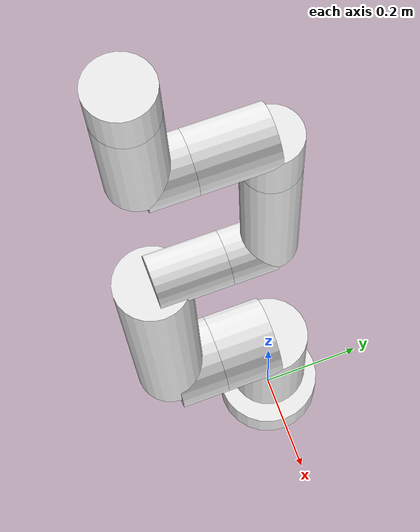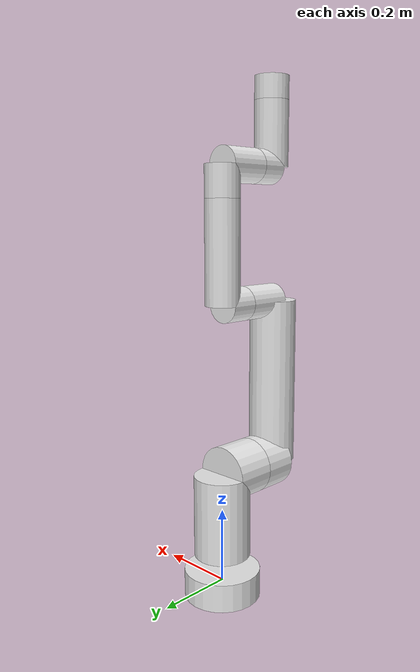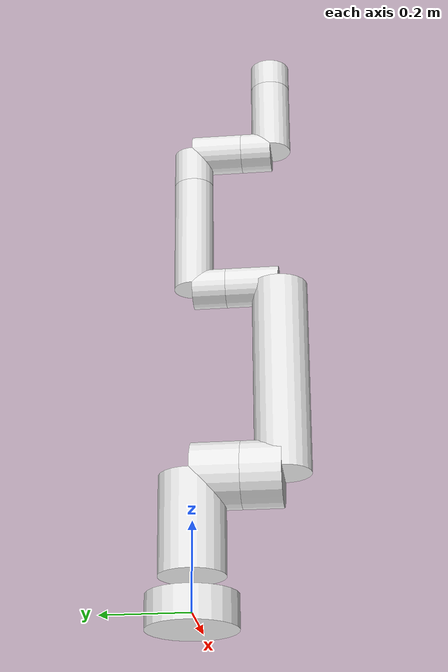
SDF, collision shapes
<sdf version='1.6'>
  <model name='indy7'>
    <link name='link0'>
      <pose frame=''>0 0 0 0 -0 0</pose>
      <inertial>
        <pose frame=''>0 0 0 0 -0 0</pose>
        <mass>1.59307</mass>
        <inertia>
          <ixx>0.00572623</ixx>
          <ixy>2.51e-06</ixy>
          <ixz>-0.0001138</ixz>
          <iyy>0.00558959</iyy>
          <iyz>-1.4e-07</iyz>
          <izz>0.00966674</izz>
        </inertia>
      </inertial>
      <collision name='link0_collision'>
        <pose frame=''>0 0 0 0 -0 0</pose>
        <geometry>
          <cylinder>
            <length>0.075</length>
            <radius>0.102</radius>
          </cylinder>
        </geometry>
        <surface>
          <contact>
            <ode/>
          </contact>
          <friction>
            <ode>
              <mu>0.2</mu>
              <mu2>0.2</mu2>
            </ode>
          </friction>
        </surface>
      </collision>
      <visual name='link0_visual'>
        <pose frame=''>0 0 0 0 -0 0</pose>
        <geometry>
          <mesh>
            <scale>1 1 1</scale>
            <uri>model://indy7_description/meshes/stl/Indy7_0.stl</uri>
          </mesh>
        </geometry>
        <material>
          <script>
            <name>Gazebo/White</name>
            <uri>file://media/materials/scripts/gazebo.material</uri>
          </script>
        </material>
      </visual>
      <gravity>1</gravity>
      <velocity_decay/>
    </link>
    <joint name='global' type='fixed'>
      <child>link0</child>
      <parent>world</parent>
    </joint>
    <link name='link1'>
      <pose frame=''>0 0 0.0775 0 -0 0</pose>
      <inertial>
        <pose frame=''>0 0 0 0 -0 0</pose>
        <mass>11.803</mass>
        <inertia>
          <ixx>0.154186</ixx>
          <ixy>-2.35e-06</ixy>
          <ixz>1.739e-05</ixz>
          <iyy>0.12937</iyy>
          <iyz>-0.0485427</iyz>
          <izz>0.0596441</izz>
        </inertia>
      </inertial>
      <collision name='link1_collision'>
        <pose frame=''>0 0 0.111 0 -0 0</pose>
        <geometry>
          <cylinder>
            <length>0.222</length>
            <radius>0.075</radius>
          </cylinder>
        </geometry>
        <surface>
          <contact>
            <ode/>
          </contact>
          <friction>
            <ode>
              <mu>0.2</mu>
              <mu2>0.2</mu2>
            </ode>
          </friction>
        </surface>
      </collision>
      <collision name='link1_collision_1'>
        <pose frame=''>0 -0.0545 0.222 1.5708 -0 0</pose>
        <geometry>
          <cylinder>
            <length>0.109</length>
            <radius>0.075</radius>
          </cylinder>
        </geometry>
        <surface>
          <contact>
            <ode/>
          </contact>
          <friction>
            <ode>
              <mu>0.2</mu>
              <mu2>0.2</mu2>
            </ode>
          </friction>
        </surface>
      </collision>
      <visual name='link1_visual'>
        <pose frame=''>0 0 0 0 -0 0</pose>
        <geometry>
          <mesh>
            <scale>1 1 1</scale>
            <uri>model://indy7_description/meshes/stl/Indy7_1.stl</uri>
          </mesh>
        </geometry>
        <material>
          <script>
            <name>Gazebo/White</name>
            <uri>file://media/materials/scripts/gazebo.material</uri>
          </script>
        </material>
      </visual>
      <gravity>1</gravity>
      <velocity_decay/>
    </link>
    <joint name='joint0' type='revolute'>
      <child>link1</child>
      <parent>link0</parent>
      <axis>
        <xyz>0 0 1</xyz>
        <limit>
          <lower>-3.05433</lower>
          <upper>3.05433</upper>
          <effort>10</effort>
          <velocity>1</velocity>
        </limit>
        <dynamics>
          <spring_reference>0</spring_reference>
          <spring_stiffness>0</spring_stiffness>
        </dynamics>
        <use_parent_model_frame>1</use_parent_model_frame>
      </axis>
    </joint>
    <link name='link2'>
      <pose frame=''>0 -0.109 0.2995 -1.57079 1.57079 3.14159</pose>
      <inertial>
        <pose frame=''>0 0 0 0 -0 0</pose>
        <mass>7.99292</mass>
        <inertia>
          <ixx>0.29357</ixx>
          <ixy>-4e-07</ixy>
          <ixz>1.441e-05</ixz>
          <iyy>0.280941</iyy>
          <iyz>0.0372797</iyz>
          <izz>0.0362061</izz>
        </inertia>
      </inertial>
      <collision name='link2_collision'>
        <pose frame=''>-0.225 0 0.09 1.5708 0 -1.5708</pose>
        <geometry>
          <cylinder>
            <length>0.45</length>
            <radius>0.063</radius>
          </cylinder>
        </geometry>
        <surface>
          <contact>
            <ode/>
          </contact>
          <friction>
            <ode>
              <mu>0.2</mu>
              <mu2>0.2</mu2>
            </ode>
          </friction>
        </surface>
      </collision>
      <collision name='link2_collision_1'>
        <pose frame=''>0 0 0.045 0 -0 0</pose>
        <geometry>
          <cylinder>
            <length>0.09</length>
            <radius>0.075</radius>
          </cylinder>
        </geometry>
        <surface>
          <contact>
            <ode/>
          </contact>
          <friction>
            <ode>
              <mu>0.2</mu>
              <mu2>0.2</mu2>
            </ode>
          </friction>
        </surface>
      </collision>
      <collision name='link2_collision_2'>
        <pose frame=''>-0.45 0 0.02975 0 -0 0</pose>
        <geometry>
          <cylinder>
            <length>0.1205</length>
            <radius>0.045</radius>
          </cylinder>
        </geometry>
        <surface>
          <contact>
            <ode/>
          </contact>
          <friction>
            <ode>
              <mu>0.2</mu>
              <mu2>0.2</mu2>
            </ode>
          </friction>
        </surface>
      </collision>
      <visual name='link2_visual'>
        <pose frame=''>0 0 0 0 -0 0</pose>
        <geometry>
          <mesh>
            <scale>1 1 1</scale>
            <uri>model://indy7_description/meshes/stl/Indy7_2.stl</uri>
          </mesh>
        </geometry>
        <material>
          <script>
            <name>Gazebo/White</name>
            <uri>file://media/materials/scripts/gazebo.material</uri>
          </script>
        </material>
      </visual>
      <gravity>1</gravity>
      <velocity_decay/>
    </link>
    <joint name='joint1' type='revolute'>
      <child>link2</child>
      <parent>link1</parent>
      <axis>
        <xyz>0 -1 -0</xyz>
        <limit>
          <lower>-3.05433</lower>
          <upper>3.05433</upper>
          <effort>10</effort>
          <velocity>1</velocity>
        </limit>
        <dynamics>
          <spring_reference>0</spring_reference>
          <spring_stiffness>0</spring_stiffness>
        </dynamics>
        <use_parent_model_frame>1</use_parent_model_frame>
      </axis>
    </joint>
    <link name='link3'>
      <pose frame=''>-0 -0.0785 0.7495 -1.57079 1.57079 3.14159</pose>
      <inertial>
        <pose frame=''>0 0 0 0 -0 0</pose>
        <mass>2.99134</mass>
        <inertia>
          <ixx>0.0342459</ixx>
          <ixy>1.49e-06</ixy>
          <ixz>7.24e-06</ixz>
          <iyy>0.0340602</iyy>
          <iyz>0.00186009</iyz>
          <izz>0.00450477</izz>
        </inertia>
      </inertial>
      <collision name='link3_collision'>
        <pose frame=''>-0.1335 0 -0.075 1.5708 0 -1.5708</pose>
        <geometry>
          <cylinder>
            <length>0.267</length>
            <radius>0.045</radius>
          </cylinder>
        </geometry>
        <surface>
          <contact>
            <ode/>
          </contact>
          <friction>
            <ode>
              <mu>0.2</mu>
              <mu2>0.2</mu2>
            </ode>
          </friction>
        </surface>
      </collision>
      <collision name='link3_collision_1'>
        <pose frame=''>0 0 -0.0375 0 -0 0</pose>
        <geometry>
          <cylinder>
            <length>0.075</length>
            <radius>0.045</radius>
          </cylinder>
        </geometry>
        <surface>
          <contact>
            <ode/>
          </contact>
          <friction>
            <ode>
              <mu>0.2</mu>
              <mu2>0.2</mu2>
            </ode>
          </friction>
        </surface>
      </collision>
      <visual name='link3_visual'>
        <pose frame=''>0 0 0 0 -0 0</pose>
        <geometry>
          <mesh>
            <scale>1 1 1</scale>
            <uri>model://indy7_description/meshes/stl/Indy7_3.stl</uri>
          </mesh>
        </geometry>
        <material>
          <script>
            <name>Gazebo/White</name>
            <uri>file://media/materials/scripts/gazebo.material</uri>
          </script>
        </material>
      </visual>
      <gravity>1</gravity>
      <velocity_decay/>
    </link>
    <joint name='joint2' type='revolute'>
      <child>link3</child>
      <parent>link2</parent>
      <axis>
        <xyz>0 -1 -0</xyz>
        <limit>
          <lower>-3.05433</lower>
          <upper>3.05433</upper>
          <effort>10</effort>
          <velocity>1</velocity>
        </limit>
        <dynamics>
          <spring_reference>0</spring_reference>
          <spring_stiffness>0</spring_stiffness>
        </dynamics>
        <use_parent_model_frame>1</use_parent_model_frame>
      </axis>
    </joint>
    <link name='link4'>
      <pose frame=''>-0 -0.0035 1.0165 0 -0 0</pose>
      <inertial>
        <pose frame=''>0 0 0 0 -0 0</pose>
        <mass>2.12317</mass>
        <inertia>
          <ixx>0.00670405</ixx>
          <ixy>3.75e-06</ixy>
          <ixz>1.5e-06</ixz>
          <iyy>0.00279246</iyy>
          <iyz>-0.00127967</iyz>
          <izz>0.00619341</izz>
        </inertia>
      </inertial>
      <collision name='link4_collision'>
        <pose frame=''>0 -0.057 0.083 1.5708 -0 0</pose>
        <geometry>
          <cylinder>
            <length>0.114</length>
            <radius>0.045</radius>
          </cylinder>
        </geometry>
        <surface>
          <contact>
            <ode/>
          </contact>
          <friction>
            <ode>
              <mu>0.2</mu>
              <mu2>0.2</mu2>
            </ode>
          </friction>
        </surface>
      </collision>
      <collision name='link4_collision_1'>
        <pose frame=''>0 -0.057 0.083 1.5708 -0 0</pose>
        <geometry>
          <cylinder>
            <length>0.114</length>
            <radius>0.045</radius>
          </cylinder>
        </geometry>
        <surface>
          <contact>
            <ode/>
          </contact>
          <friction>
            <ode>
              <mu>0.2</mu>
              <mu2>0.2</mu2>
            </ode>
          </friction>
        </surface>
      </collision>
      <collision name='link4_collision_2'>
        <pose frame=''>0 0 0.0415 0 -0 0</pose>
        <geometry>
          <cylinder>
            <length>0.083</length>
            <radius>0.045</radius>
          </cylinder>
        </geometry>
        <surface>
          <contact>
            <ode/>
          </contact>
          <friction>
            <ode>
              <mu>0.2</mu>
              <mu2>0.2</mu2>
            </ode>
          </friction>
        </surface>
      </collision>
      <visual name='link4_visual'>
        <pose frame=''>0 0 0 0 -0 0</pose>
        <geometry>
          <mesh>
            <scale>1 1 1</scale>
            <uri>model://indy7_description/meshes/stl/Indy7_4.stl</uri>
          </mesh>
        </geometry>
        <material>
          <script>
            <name>Gazebo/White</name>
            <uri>file://media/materials/scripts/gazebo.material</uri>
          </script>
        </material>
      </visual>
      <gravity>1</gravity>
      <velocity_decay/>
    </link>
    <joint name='joint3' type='revolute'>
      <child>link4</child>
      <parent>link3</parent>
      <axis>
        <xyz>-0 -0 1</xyz>
        <limit>
          <lower>-3.05433</lower>
          <upper>3.05433</upper>
          <effort>10</effort>
          <velocity>1</velocity>
        </limit>
        <dynamics>
          <spring_reference>0</spring_reference>
          <spring_stiffness>0</spring_stiffness>
        </dynamics>
        <use_parent_model_frame>1</use_parent_model_frame>
      </axis>
    </joint>
    <link name='link5'>
      <pose frame=''>-0 -0.1175 1.0995 -1.57079 1.57079 3.14159</pose>
      <inertial>
        <pose frame=''>0 0 0 0 -0 0</pose>
        <mass>2.28865</mass>
        <inertia>
          <ixx>0.00994891</ixx>
          <ixy>1.4e-07</ixy>
          <ixz>3.21e-06</ixz>
          <iyy>0.00978189</iyy>
          <iyz>-0.00093546</iyz>
          <izz>0.00271492</izz>
        </inertia>
      </inertial>
      <collision name='link5_collision'>
        <pose frame=''>-0.084 0 0.069 1.5708 0 -1.5708</pose>
        <geometry>
          <cylinder>
            <length>0.168</length>
            <radius>0.045</radius>
          </cylinder>
        </geometry>
        <surface>
          <contact>
            <ode/>
          </contact>
          <friction>
            <ode>
              <mu>0.2</mu>
              <mu2>0.2</mu2>
            </ode>
          </friction>
        </surface>
      </collision>
      <collision name='link5_collision_1'>
        <pose frame=''>-0 0 0.0345 0 -0 0</pose>
        <geometry>
          <cylinder>
            <length>0.069</length>
            <radius>0.045</radius>
          </cylinder>
        </geometry>
        <surface>
          <contact>
            <ode/>
          </contact>
          <friction>
            <ode>
              <mu>0.2</mu>
              <mu2>0.2</mu2>
            </ode>
          </friction>
        </surface>
      </collision>
      <visual name='link5_visual'>
        <pose frame=''>0 0 0 0 -0 0</pose>
        <geometry>
          <mesh>
            <scale>1 1 1</scale>
            <uri>model://indy7_description/meshes/stl/Indy7_5.stl</uri>
          </mesh>
        </geometry>
        <material>
          <script>
            <name>Gazebo/White</name>
            <uri>file://media/materials/scripts/gazebo.material</uri>
          </script>
        </material>
      </visual>
      <gravity>1</gravity>
      <velocity_decay/>
    </link>
    <joint name='joint4' type='revolute'>
      <child>link5</child>
      <parent>link4</parent>
      <axis>
        <xyz>0 -1 -0</xyz>
        <limit>
          <lower>-3.05433</lower>
          <upper>3.05433</upper>
          <effort>10</effort>
          <velocity>1</velocity>
        </limit>
        <dynamics>
          <spring_reference>0</spring_reference>
          <spring_stiffness>0</spring_stiffness>
        </dynamics>
        <use_parent_model_frame>1</use_parent_model_frame>
      </axis>
    </joint>
    <link name='link6'>
      <pose frame=''>-0 -0.1865 1.2675 0 -0 0</pose>
      <inertial>
        <pose frame=''>0 0 0 0 -0 0</pose>
        <mass>0.400839</mass>
        <inertia>
          <ixx>0.00043534</ixx>
          <ixy>1.3e-07</ixy>
          <ixz>-2e-08</ixz>
          <iyy>0.00044549</iyy>
          <iyz>5.1e-07</iyz>
          <izz>0.00059634</izz>
        </inertia>
      </inertial>
      <collision name='link6_collision'>
        <pose frame=''>0 0 0.03 0 -0 0</pose>
        <geometry>
          <cylinder>
            <length>0.06</length>
            <radius>0.045</radius>
          </cylinder>
        </geometry>
        <surface>
          <contact>
            <ode/>
          </contact>
          <friction>
            <ode>
              <mu>0.2</mu>
              <mu2>0.2</mu2>
            </ode>
          </friction>
        </surface>
      </collision>
      <visual name='link6_visual'>
        <pose frame=''>0 0 0 0 -0 0</pose>
        <geometry>
          <mesh>
            <scale>1 1 1</scale>
            <uri>model://indy7_description/meshes/stl/Indy7_6.stl</uri>
          </mesh>
        </geometry>
        <material>
          <script>
            <name>Gazebo/White</name>
            <uri>file://media/materials/scripts/gazebo.material</uri>
          </script>
        </material>
      </visual>
      <gravity>1</gravity>
      <velocity_decay/>
    </link>
    <joint name='joint5' type='revolute'>
      <child>link6</child>
      <parent>link5</parent>
      <axis>
        <xyz>-0 -0 1</xyz>
        <limit>
          <lower>-3.75246</lower>
          <upper>3.75246</upper>
          <effort>10</effort>
          <velocity>1</velocity>
        </limit>
        <dynamics>
          <spring_reference>0</spring_reference>
          <spring_stiffness>0</spring_stiffness>
        </dynamics>
        <use_parent_model_frame>1</use_parent_model_frame>
      </axis>
    </joint>
    <static>0</static>
    <plugin name='gazebo_ros_control' filename='libgazebo_ros_control.so'/>
  </model>
</sdf>
